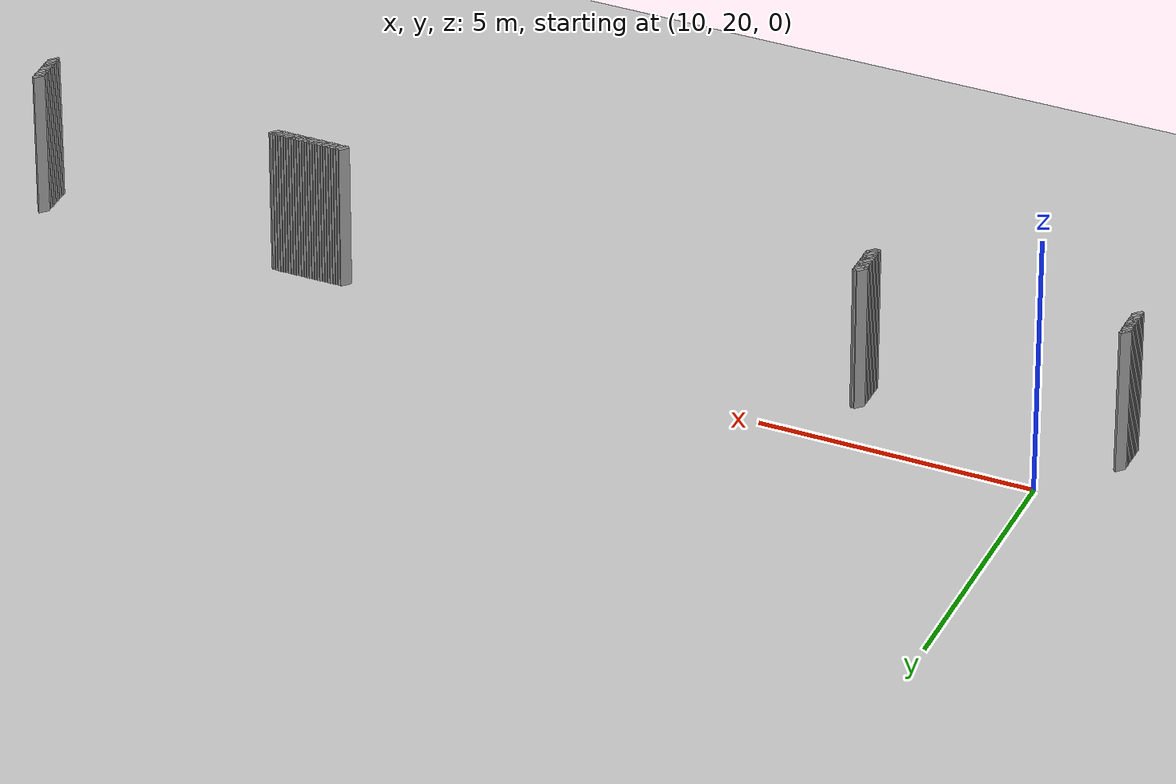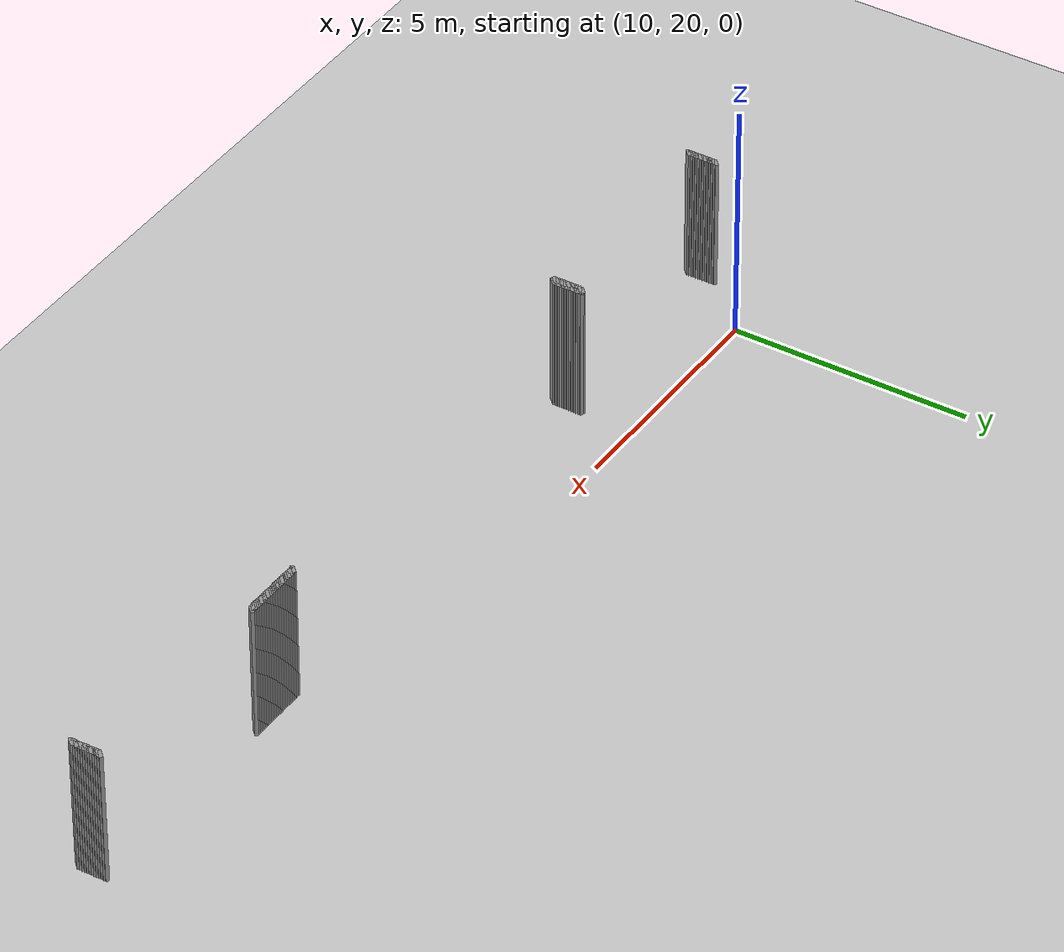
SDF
<sdf version="1.5">
 <world name="default">
  <include><uri>model://ground_plane</uri></include>
  <include><uri>model://sun</uri></include>
  <model name="grey_wall_632">
   <static>1</static>
   <link name="link">
    <pose>23.25 18.9  1.4 0 0 -0.785398163397</pose>
    <collision name="collision"><geometry><box><size>0.0707106781187 .2  2.8</size></box></geometry></collision>
    <visual name="visual">
     <cast_shadows>0</cast_shadows>
     <geometry><box><size>0.0707106781187 .2  2.8</size></box></geometry>
     <material>
      <script>
       <uri>model://grey_wall/materials/scripts</uri>
       <uri>model://grey_wall/materials/textures</uri>
       <name>vrc/grey_wall</name>
      </script>
     </material>
    </visual>
   </link>
  </model>
  <model name="grey_wall_633">
   <static>1</static>
   <link name="link">
    <pose>23.3 18.9  1.4 0 0 -0.785398163397</pose>
    <collision name="collision"><geometry><box><size>0.0707106781187 .2  2.8</size></box></geometry></collision>
    <visual name="visual">
     <cast_shadows>0</cast_shadows>
     <geometry><box><size>0.0707106781187 .2  2.8</size></box></geometry>
     <material>
      <script>
       <uri>model://grey_wall/materials/scripts</uri>
       <uri>model://grey_wall/materials/textures</uri>
       <name>vrc/grey_wall</name>
      </script>
     </material>
    </visual>
   </link>
  </model>
  <model name="grey_wall_634">
   <static>1</static>
   <link name="link">
    <pose>23.35 18.9  1.4 0 0 -0.785398163397</pose>
    <collision name="collision"><geometry><box><size>0.0707106781187 .2  2.8</size></box></geometry></collision>
    <visual name="visual">
     <cast_shadows>0</cast_shadows>
     <geometry><box><size>0.0707106781187 .2  2.8</size></box></geometry>
     <material>
      <script>
       <uri>model://grey_wall/materials/scripts</uri>
       <uri>model://grey_wall/materials/textures</uri>
       <name>vrc/grey_wall</name>
      </script>
     </material>
    </visual>
   </link>
  </model>
  <model name="grey_wall_635">
   <static>1</static>
   <link name="link">
    <pose>23.4 18.9  1.4 0 0 -0.785398163397</pose>
    <collision name="collision"><geometry><box><size>0.0707106781187 .2  2.8</size></box></geometry></collision>
    <visual name="visual">
     <cast_shadows>0</cast_shadows>
     <geometry><box><size>0.0707106781187 .2  2.8</size></box></geometry>
     <material>
      <script>
       <uri>model://grey_wall/materials/scripts</uri>
       <uri>model://grey_wall/materials/textures</uri>
       <name>vrc/grey_wall</name>
      </script>
     </material>
    </visual>
   </link>
  </model>
  <model name="grey_wall_636">
   <static>1</static>
   <link name="link">
    <pose>23.45 18.9  1.4 0 0 -0.785398163397</pose>
    <collision name="collision"><geometry><box><size>0.0707106781187 .2  2.8</size></box></geometry></collision>
    <visual name="visual">
     <cast_shadows>0</cast_shadows>
     <geometry><box><size>0.0707106781187 .2  2.8</size></box></geometry>
     <material>
      <script>
       <uri>model://grey_wall/materials/scripts</uri>
       <uri>model://grey_wall/materials/textures</uri>
       <name>vrc/grey_wall</name>
      </script>
     </material>
    </visual>
   </link>
  </model>
  <model name="grey_wall_637">
   <static>1</static>
   <link name="link">
    <pose>23.5 18.9  1.4 0 0 -0.785398163397</pose>
    <collision name="collision"><geometry><box><size>0.0707106781187 .2  2.8</size></box></geometry></collision>
    <visual name="visual">
     <cast_shadows>0</cast_shadows>
     <geometry><box><size>0.0707106781187 .2  2.8</size></box></geometry>
     <material>
      <script>
       <uri>model://grey_wall/materials/scripts</uri>
       <uri>model://grey_wall/materials/textures</uri>
       <name>vrc/grey_wall</name>
      </script>
     </material>
    </visual>
   </link>
  </model>
  <model name="grey_wall_638">
   <static>1</static>
   <link name="link">
    <pose>23.55 18.9  1.4 0 0 -0.785398163397</pose>
    <collision name="collision"><geometry><box><size>0.0707106781187 .2  2.8</size></box></geometry></collision>
    <visual name="visual">
     <cast_shadows>0</cast_shadows>
     <geometry><box><size>0.0707106781187 .2  2.8</size></box></geometry>
     <material>
      <script>
       <uri>model://grey_wall/materials/scripts</uri>
       <uri>model://grey_wall/materials/textures</uri>
       <name>vrc/grey_wall</name>
      </script>
     </material>
    </visual>
   </link>
  </model>
  <model name="grey_wall_639">
   <static>1</static>
   <link name="link">
    <pose>23.6 18.9  1.4 0 0 -0.785398163397</pose>
    <collision name="collision"><geometry><box><size>0.0707106781187 .2  2.8</size></box></geometry></collision>
    <visual name="visual">
     <cast_shadows>0</cast_shadows>
     <geometry><box><size>0.0707106781187 .2  2.8</size></box></geometry>
     <material>
      <script>
       <uri>model://grey_wall/materials/scripts</uri>
       <uri>model://grey_wall/materials/textures</uri>
       <name>vrc/grey_wall</name>
      </script>
     </material>
    </visual>
   </link>
  </model>
  <model name="grey_wall_640">
   <static>1</static>
   <link name="link">
    <pose>23.65 18.9  1.4 0 0 -0.785398163397</pose>
    <collision name="collision"><geometry><box><size>0.0707106781187 .2  2.8</size></box></geometry></collision>
    <visual name="visual">
     <cast_shadows>0</cast_shadows>
     <geometry><box><size>0.0707106781187 .2  2.8</size></box></geometry>
     <material>
      <script>
       <uri>model://grey_wall/materials/scripts</uri>
       <uri>model://grey_wall/materials/textures</uri>
       <name>vrc/grey_wall</name>
      </script>
     </material>
    </visual>
   </link>
  </model>
  <model name="grey_wall_641">
   <static>1</static>
   <link name="link">
    <pose>23.7 18.9  1.4 0 0 -0.785398163397</pose>
    <collision name="collision"><geometry><box><size>0.0707106781187 .2  2.8</size></box></geometry></collision>
    <visual name="visual">
     <cast_shadows>0</cast_shadows>
     <geometry><box><size>0.0707106781187 .2  2.8</size></box></geometry>
     <material>
      <script>
       <uri>model://grey_wall/materials/scripts</uri>
       <uri>model://grey_wall/materials/textures</uri>
       <name>vrc/grey_wall</name>
      </script>
     </material>
    </visual>
   </link>
  </model>
  <model name="grey_wall_642">
   <static>1</static>
   <link name="link">
    <pose>23.75 18.9  1.4 0 0 -0.785398163397</pose>
    <collision name="collision"><geometry><box><size>0.0707106781187 .2  2.8</size></box></geometry></collision>
    <visual name="visual">
     <cast_shadows>0</cast_shadows>
     <geometry><box><size>0.0707106781187 .2  2.8</size></box></geometry>
     <material>
      <script>
       <uri>model://grey_wall/materials/scripts</uri>
       <uri>model://grey_wall/materials/textures</uri>
       <name>vrc/grey_wall</name>
      </script>
     </material>
    </visual>
   </link>
  </model>
  <model name="grey_wall_643">
   <static>1</static>
   <link name="link">
    <pose>23.8 18.9  1.4 0 0 -0.785398163397</pose>
    <collision name="collision"><geometry><box><size>0.0707106781187 .2  2.8</size></box></geometry></collision>
    <visual name="visual">
     <cast_shadows>0</cast_shadows>
     <geometry><box><size>0.0707106781187 .2  2.8</size></box></geometry>
     <material>
      <script>
       <uri>model://grey_wall/materials/scripts</uri>
       <uri>model://grey_wall/materials/textures</uri>
       <name>vrc/grey_wall</name>
      </script>
     </material>
    </visual>
   </link>
  </model>
  <model name="grey_wall_644">
   <static>1</static>
   <link name="link">
    <pose>23.85 18.9  1.4 0 0 -0.785398163397</pose>
    <collision name="collision"><geometry><box><size>0.0707106781187 .2  2.8</size></box></geometry></collision>
    <visual name="visual">
     <cast_shadows>0</cast_shadows>
     <geometry><box><size>0.0707106781187 .2  2.8</size></box></geometry>
     <material>
      <script>
       <uri>model://grey_wall/materials/scripts</uri>
       <uri>model://grey_wall/materials/textures</uri>
       <name>vrc/grey_wall</name>
      </script>
     </material>
    </visual>
   </link>
  </model>
  <model name="grey_wall_645">
   <static>1</static>
   <link name="link">
    <pose>23.9 18.9  1.4 0 0 -0.785398163397</pose>
    <collision name="collision"><geometry><box><size>0.0707106781187 .2  2.8</size></box></geometry></collision>
    <visual name="visual">
     <cast_shadows>0</cast_shadows>
     <geometry><box><size>0.0707106781187 .2  2.8</size></box></geometry>
     <material>
      <script>
       <uri>model://grey_wall/materials/scripts</uri>
       <uri>model://grey_wall/materials/textures</uri>
       <name>vrc/grey_wall</name>
      </script>
     </material>
    </visual>
   </link>
  </model>
  <model name="grey_wall_646">
   <static>1</static>
   <link name="link">
    <pose>23.95 18.9  1.4 0 0 -0.785398163397</pose>
    <collision name="collision"><geometry><box><size>0.0707106781187 .2  2.8</size></box></geometry></collision>
    <visual name="visual">
     <cast_shadows>0</cast_shadows>
     <geometry><box><size>0.0707106781187 .2  2.8</size></box></geometry>
     <material>
      <script>
       <uri>model://grey_wall/materials/scripts</uri>
       <uri>model://grey_wall/materials/textures</uri>
       <name>vrc/grey_wall</name>
      </script>
     </material>
    </visual>
   </link>
  </model>
  <model name="grey_wall_647">
   <static>1</static>
   <link name="link">
    <pose>24.0 18.9  1.4 0 0 -0.785398163397</pose>
    <collision name="collision"><geometry><box><size>0.0707106781187 .2  2.8</size></box></geometry></collision>
    <visual name="visual">
     <cast_shadows>0</cast_shadows>
     <geometry><box><size>0.0707106781187 .2  2.8</size></box></geometry>
     <material>
      <script>
       <uri>model://grey_wall/materials/scripts</uri>
       <uri>model://grey_wall/materials/textures</uri>
       <name>vrc/grey_wall</name>
      </script>
     </material>
    </visual>
   </link>
  </model>
  <model name="grey_wall_648">
   <static>1</static>
   <link name="link">
    <pose>24.05 18.9  1.4 0 0 -0.785398163397</pose>
    <collision name="collision"><geometry><box><size>0.0707106781187 .2  2.8</size></box></geometry></collision>
    <visual name="visual">
     <cast_shadows>0</cast_shadows>
     <geometry><box><size>0.0707106781187 .2  2.8</size></box></geometry>
     <material>
      <script>
       <uri>model://grey_wall/materials/scripts</uri>
       <uri>model://grey_wall/materials/textures</uri>
       <name>vrc/grey_wall</name>
      </script>
     </material>
    </visual>
   </link>
  </model>
  <model name="grey_wall_649">
   <static>1</static>
   <link name="link">
    <pose>24.1 18.9  1.4 0 0 -0.785398163397</pose>
    <collision name="collision"><geometry><box><size>0.0707106781187 .2  2.8</size></box></geometry></collision>
    <visual name="visual">
     <cast_shadows>0</cast_shadows>
     <geometry><box><size>0.0707106781187 .2  2.8</size></box></geometry>
     <material>
      <script>
       <uri>model://grey_wall/materials/scripts</uri>
       <uri>model://grey_wall/materials/textures</uri>
       <name>vrc/grey_wall</name>
      </script>
     </material>
    </visual>
   </link>
  </model>
  <model name="grey_wall_650">
   <static>1</static>
   <link name="link">
    <pose>24.15 18.9  1.4 0 0 -0.785398163397</pose>
    <collision name="collision"><geometry><box><size>0.0707106781187 .2  2.8</size></box></geometry></collision>
    <visual name="visual">
     <cast_shadows>0</cast_shadows>
     <geometry><box><size>0.0707106781187 .2  2.8</size></box></geometry>
     <material>
      <script>
       <uri>model://grey_wall/materials/scripts</uri>
       <uri>model://grey_wall/materials/textures</uri>
       <name>vrc/grey_wall</name>
      </script>
     </material>
    </visual>
   </link>
  </model>
  <model name="grey_wall_651">
   <static>1</static>
   <link name="link">
    <pose>24.2 18.9  1.4 0 0 -0.785398163397</pose>
    <collision name="collision"><geometry><box><size>0.0707106781187 .2  2.8</size></box></geometry></collision>
    <visual name="visual">
     <cast_shadows>0</cast_shadows>
     <geometry><box><size>0.0707106781187 .2  2.8</size></box></geometry>
     <material>
      <script>
       <uri>model://grey_wall/materials/scripts</uri>
       <uri>model://grey_wall/materials/textures</uri>
       <name>vrc/grey_wall</name>
      </script>
     </material>
    </visual>
   </link>
  </model>
  <model name="grey_wall_652">
   <static>1</static>
   <link name="link">
    <pose>24.25 18.9  1.4 0 0 -0.785398163397</pose>
    <collision name="collision"><geometry><box><size>0.0707106781187 .2  2.8</size></box></geometry></collision>
    <visual name="visual">
     <cast_shadows>0</cast_shadows>
     <geometry><box><size>0.0707106781187 .2  2.8</size></box></geometry>
     <material>
      <script>
       <uri>model://grey_wall/materials/scripts</uri>
       <uri>model://grey_wall/materials/textures</uri>
       <name>vrc/grey_wall</name>
      </script>
     </material>
    </visual>
   </link>
  </model>
  <model name="grey_wall_653">
   <static>1</static>
   <link name="link">
    <pose>24.3 18.9  1.4 0 0 -0.785398163397</pose>
    <collision name="collision"><geometry><box><size>0.0707106781187 .2  2.8</size></box></geometry></collision>
    <visual name="visual">
     <cast_shadows>0</cast_shadows>
     <geometry><box><size>0.0707106781187 .2  2.8</size></box></geometry>
     <material>
      <script>
       <uri>model://grey_wall/materials/scripts</uri>
       <uri>model://grey_wall/materials/textures</uri>
       <name>vrc/grey_wall</name>
      </script>
     </material>
    </visual>
   </link>
  </model>
  <model name="grey_wall_654">
   <static>1</static>
   <link name="link">
    <pose>24.35 18.9  1.4 0 0 -0.785398163397</pose>
    <collision name="collision"><geometry><box><size>0.0707106781187 .2  2.8</size></box></geometry></collision>
    <visual name="visual">
     <cast_shadows>0</cast_shadows>
     <geometry><box><size>0.0707106781187 .2  2.8</size></box></geometry>
     <material>
      <script>
       <uri>model://grey_wall/materials/scripts</uri>
       <uri>model://grey_wall/materials/textures</uri>
       <name>vrc/grey_wall</name>
      </script>
     </material>
    </visual>
   </link>
  </model>
  <model name="grey_wall_655">
   <static>1</static>
   <link name="link">
    <pose>24.4 18.9  1.4 0 0 -0.785398163397</pose>
    <collision name="collision"><geometry><box><size>0.0707106781187 .2  2.8</size></box></geometry></collision>
    <visual name="visual">
     <cast_shadows>0</cast_shadows>
     <geometry><box><size>0.0707106781187 .2  2.8</size></box></geometry>
     <material>
      <script>
       <uri>model://grey_wall/materials/scripts</uri>
       <uri>model://grey_wall/materials/textures</uri>
       <name>vrc/grey_wall</name>
      </script>
     </material>
    </visual>
   </link>
  </model>
  <model name="grey_wall_656">
   <static>1</static>
   <link name="link">
    <pose>24.45 18.9  1.4 0 0 -0.785398163397</pose>
    <collision name="collision"><geometry><box><size>0.0707106781187 .2  2.8</size></box></geometry></collision>
    <visual name="visual">
     <cast_shadows>0</cast_shadows>
     <geometry><box><size>0.0707106781187 .2  2.8</size></box></geometry>
     <material>
      <script>
       <uri>model://grey_wall/materials/scripts</uri>
       <uri>model://grey_wall/materials/textures</uri>
       <name>vrc/grey_wall</name>
      </script>
     </material>
    </visual>
   </link>
  </model>
  <model name="grey_wall_657">
   <static>1</static>
   <link name="link">
    <pose>24.5 18.9  1.4 0 0 -0.785398163397</pose>
    <collision name="collision"><geometry><box><size>0.0707106781187 .2  2.8</size></box></geometry></collision>
    <visual name="visual">
     <cast_shadows>0</cast_shadows>
     <geometry><box><size>0.0707106781187 .2  2.8</size></box></geometry>
     <material>
      <script>
       <uri>model://grey_wall/materials/scripts</uri>
       <uri>model://grey_wall/materials/textures</uri>
       <name>vrc/grey_wall</name>
      </script>
     </material>
    </visual>
   </link>
  </model>
  <model name="grey_wall_658">
   <static>1</static>
   <link name="link">
    <pose>24.55 18.9  1.4 0 0 -0.785398163397</pose>
    <collision name="collision"><geometry><box><size>0.0707106781187 .2  2.8</size></box></geometry></collision>
    <visual name="visual">
     <cast_shadows>0</cast_shadows>
     <geometry><box><size>0.0707106781187 .2  2.8</size></box></geometry>
     <material>
      <script>
       <uri>model://grey_wall/materials/scripts</uri>
       <uri>model://grey_wall/materials/textures</uri>
       <name>vrc/grey_wall</name>
      </script>
     </material>
    </visual>
   </link>
  </model>
  <model name="grey_wall_659">
   <static>1</static>
   <link name="link">
    <pose>29.1 18.9  1.4 0 0 -0.785398163397</pose>
    <collision name="collision"><geometry><box><size>0.0707106781187 .2  2.8</size></box></geometry></collision>
    <visual name="visual">
     <cast_shadows>0</cast_shadows>
     <geometry><box><size>0.0707106781187 .2  2.8</size></box></geometry>
     <material>
      <script>
       <uri>model://grey_wall/materials/scripts</uri>
       <uri>model://grey_wall/materials/textures</uri>
       <name>vrc/grey_wall</name>
      </script>
     </material>
    </visual>
   </link>
  </model>
  <model name="grey_wall_660">
   <static>1</static>
   <link name="link">
    <pose>8.9 18.85  1.4 0 0 -0.785398163397</pose>
    <collision name="collision"><geometry><box><size>0.0707106781187 .2  2.8</size></box></geometry></collision>
    <visual name="visual">
     <cast_shadows>0</cast_shadows>
     <geometry><box><size>0.0707106781187 .2  2.8</size></box></geometry>
     <material>
      <script>
       <uri>model://grey_wall/materials/scripts</uri>
       <uri>model://grey_wall/materials/textures</uri>
       <name>vrc/grey_wall</name>
      </script>
     </material>
    </visual>
   </link>
  </model>
  <model name="grey_wall_661">
   <static>1</static>
   <link name="link">
    <pose>13.65 18.85  1.4 0 0 -0.785398163397</pose>
    <collision name="collision"><geometry><box><size>0.0707106781187 .2  2.8</size></box></geometry></collision>
    <visual name="visual">
     <cast_shadows>0</cast_shadows>
     <geometry><box><size>0.0707106781187 .2  2.8</size></box></geometry>
     <material>
      <script>
       <uri>model://grey_wall/materials/scripts</uri>
       <uri>model://grey_wall/materials/textures</uri>
       <name>vrc/grey_wall</name>
      </script>
     </material>
    </visual>
   </link>
  </model>
  <model name="grey_wall_662">
   <static>1</static>
   <link name="link">
    <pose>13.7 18.85  1.4 0 0 -0.785398163397</pose>
    <collision name="collision"><geometry><box><size>0.0707106781187 .2  2.8</size></box></geometry></collision>
    <visual name="visual">
     <cast_shadows>0</cast_shadows>
     <geometry><box><size>0.0707106781187 .2  2.8</size></box></geometry>
     <material>
      <script>
       <uri>model://grey_wall/materials/scripts</uri>
       <uri>model://grey_wall/materials/textures</uri>
       <name>vrc/grey_wall</name>
      </script>
     </material>
    </visual>
   </link>
  </model>
  <model name="grey_wall_663">
   <static>1</static>
   <link name="link">
    <pose>29.1 18.85  1.4 0 0 -0.785398163397</pose>
    <collision name="collision"><geometry><box><size>0.0707106781187 .2  2.8</size></box></geometry></collision>
    <visual name="visual">
     <cast_shadows>0</cast_shadows>
     <geometry><box><size>0.0707106781187 .2  2.8</size></box></geometry>
     <material>
      <script>
       <uri>model://grey_wall/materials/scripts</uri>
       <uri>model://grey_wall/materials/textures</uri>
       <name>vrc/grey_wall</name>
      </script>
     </material>
    </visual>
   </link>
  </model>
  <model name="grey_wall_664">
   <static>1</static>
   <link name="link">
    <pose>8.9 18.8  1.4 0 0 -0.785398163397</pose>
    <collision name="collision"><geometry><box><size>0.0707106781187 .2  2.8</size></box></geometry></collision>
    <visual name="visual">
     <cast_shadows>0</cast_shadows>
     <geometry><box><size>0.0707106781187 .2  2.8</size></box></geometry>
     <material>
      <script>
       <uri>model://grey_wall/materials/scripts</uri>
       <uri>model://grey_wall/materials/textures</uri>
       <name>vrc/grey_wall</name>
      </script>
     </material>
    </visual>
   </link>
  </model>
  <model name="grey_wall_665">
   <static>1</static>
   <link name="link">
    <pose>13.65 18.8  1.4 0 0 -0.785398163397</pose>
    <collision name="collision"><geometry><box><size>0.0707106781187 .2  2.8</size></box></geometry></collision>
    <visual name="visual">
     <cast_shadows>0</cast_shadows>
     <geometry><box><size>0.0707106781187 .2  2.8</size></box></geometry>
     <material>
      <script>
       <uri>model://grey_wall/materials/scripts</uri>
       <uri>model://grey_wall/materials/textures</uri>
       <name>vrc/grey_wall</name>
      </script>
     </material>
    </visual>
   </link>
  </model>
  <model name="grey_wall_666">
   <static>1</static>
   <link name="link">
    <pose>13.7 18.8  1.4 0 0 -0.785398163397</pose>
    <collision name="collision"><geometry><box><size>0.0707106781187 .2  2.8</size></box></geometry></collision>
    <visual name="visual">
     <cast_shadows>0</cast_shadows>
     <geometry><box><size>0.0707106781187 .2  2.8</size></box></geometry>
     <material>
      <script>
       <uri>model://grey_wall/materials/scripts</uri>
       <uri>model://grey_wall/materials/textures</uri>
       <name>vrc/grey_wall</name>
      </script>
     </material>
    </visual>
   </link>
  </model>
  <model name="grey_wall_667">
   <static>1</static>
   <link name="link">
    <pose>29.1 18.8  1.4 0 0 -0.785398163397</pose>
    <collision name="collision"><geometry><box><size>0.0707106781187 .2  2.8</size></box></geometry></collision>
    <visual name="visual">
     <cast_shadows>0</cast_shadows>
     <geometry><box><size>0.0707106781187 .2  2.8</size></box></geometry>
     <material>
      <script>
       <uri>model://grey_wall/materials/scripts</uri>
       <uri>model://grey_wall/materials/textures</uri>
       <name>vrc/grey_wall</name>
      </script>
     </material>
    </visual>
   </link>
  </model>
  <model name="grey_wall_668">
   <static>1</static>
   <link name="link">
    <pose>8.9 18.75  1.4 0 0 -0.785398163397</pose>
    <collision name="collision"><geometry><box><size>0.0707106781187 .2  2.8</size></box></geometry></collision>
    <visual name="visual">
     <cast_shadows>0</cast_shadows>
     <geometry><box><size>0.0707106781187 .2  2.8</size></box></geometry>
     <material>
      <script>
       <uri>model://grey_wall/materials/scripts</uri>
       <uri>model://grey_wall/materials/textures</uri>
       <name>vrc/grey_wall</name>
      </script>
     </material>
    </visual>
   </link>
  </model>
  <model name="grey_wall_669">
   <static>1</static>
   <link name="link">
    <pose>13.65 18.75  1.4 0 0 -0.785398163397</pose>
    <collision name="collision"><geometry><box><size>0.0707106781187 .2  2.8</size></box></geometry></collision>
    <visual name="visual">
     <cast_shadows>0</cast_shadows>
     <geometry><box><size>0.0707106781187 .2  2.8</size></box></geometry>
     <material>
      <script>
       <uri>model://grey_wall/materials/scripts</uri>
       <uri>model://grey_wall/materials/textures</uri>
       <name>vrc/grey_wall</name>
      </script>
     </material>
    </visual>
   </link>
  </model>
  <model name="grey_wall_670">
   <static>1</static>
   <link name="link">
    <pose>13.7 18.75  1.4 0 0 -0.785398163397</pose>
    <collision name="collision"><geometry><box><size>0.0707106781187 .2  2.8</size></box></geometry></collision>
    <visual name="visual">
     <cast_shadows>0</cast_shadows>
     <geometry><box><size>0.0707106781187 .2  2.8</size></box></geometry>
     <material>
      <script>
       <uri>model://grey_wall/materials/scripts</uri>
       <uri>model://grey_wall/materials/textures</uri>
       <name>vrc/grey_wall</name>
      </script>
     </material>
    </visual>
   </link>
  </model>
  <model name="grey_wall_671">
   <static>1</static>
   <link name="link">
    <pose>29.1 18.75  1.4 0 0 -0.785398163397</pose>
    <collision name="collision"><geometry><box><size>0.0707106781187 .2  2.8</size></box></geometry></collision>
    <visual name="visual">
     <cast_shadows>0</cast_shadows>
     <geometry><box><size>0.0707106781187 .2  2.8</size></box></geometry>
     <material>
      <script>
       <uri>model://grey_wall/materials/scripts</uri>
       <uri>model://grey_wall/materials/textures</uri>
       <name>vrc/grey_wall</name>
      </script>
     </material>
    </visual>
   </link>
  </model>
  <model name="grey_wall_672">
   <static>1</static>
   <link name="link">
    <pose>8.9 18.7  1.4 0 0 -0.785398163397</pose>
    <collision name="collision"><geometry><box><size>0.0707106781187 .2  2.8</size></box></geometry></collision>
    <visual name="visual">
     <cast_shadows>0</cast_shadows>
     <geometry><box><size>0.0707106781187 .2  2.8</size></box></geometry>
     <material>
      <script>
       <uri>model://grey_wall/materials/scripts</uri>
       <uri>model://grey_wall/materials/textures</uri>
       <name>vrc/grey_wall</name>
      </script>
     </material>
    </visual>
   </link>
  </model>
  <model name="grey_wall_673">
   <static>1</static>
   <link name="link">
    <pose>13.65 18.7  1.4 0 0 -0.785398163397</pose>
    <collision name="collision"><geometry><box><size>0.0707106781187 .2  2.8</size></box></geometry></collision>
    <visual name="visual">
     <cast_shadows>0</cast_shadows>
     <geometry><box><size>0.0707106781187 .2  2.8</size></box></geometry>
     <material>
      <script>
       <uri>model://grey_wall/materials/scripts</uri>
       <uri>model://grey_wall/materials/textures</uri>
       <name>vrc/grey_wall</name>
      </script>
     </material>
    </visual>
   </link>
  </model>
  <model name="grey_wall_674">
   <static>1</static>
   <link name="link">
    <pose>13.7 18.7  1.4 0 0 -0.785398163397</pose>
    <collision name="collision"><geometry><box><size>0.0707106781187 .2  2.8</size></box></geometry></collision>
    <visual name="visual">
     <cast_shadows>0</cast_shadows>
     <geometry><box><size>0.0707106781187 .2  2.8</size></box></geometry>
     <material>
      <script>
       <uri>model://grey_wall/materials/scripts</uri>
       <uri>model://grey_wall/materials/textures</uri>
       <name>vrc/grey_wall</name>
      </script>
     </material>
    </visual>
   </link>
  </model>
  <model name="grey_wall_675">
   <static>1</static>
   <link name="link">
    <pose>29.1 18.7  1.4 0 0 -0.785398163397</pose>
    <collision name="collision"><geometry><box><size>0.0707106781187 .2  2.8</size></box></geometry></collision>
    <visual name="visual">
     <cast_shadows>0</cast_shadows>
     <geometry><box><size>0.0707106781187 .2  2.8</size></box></geometry>
     <material>
      <script>
       <uri>model://grey_wall/materials/scripts</uri>
       <uri>model://grey_wall/materials/textures</uri>
       <name>vrc/grey_wall</name>
      </script>
     </material>
    </visual>
   </link>
  </model>
  <model name="grey_wall_676">
   <static>1</static>
   <link name="link">
    <pose>8.9 18.65  1.4 0 0 -0.785398163397</pose>
    <collision name="collision"><geometry><box><size>0.0707106781187 .2  2.8</size></box></geometry></collision>
    <visual name="visual">
     <cast_shadows>0</cast_shadows>
     <geometry><box><size>0.0707106781187 .2  2.8</size></box></geometry>
     <material>
      <script>
       <uri>model://grey_wall/materials/scripts</uri>
       <uri>model://grey_wall/materials/textures</uri>
       <name>vrc/grey_wall</name>
      </script>
     </material>
    </visual>
   </link>
  </model>
  <model name="grey_wall_677">
   <static>1</static>
   <link name="link">
    <pose>13.65 18.65  1.4 0 0 -0.785398163397</pose>
    <collision name="collision"><geometry><box><size>0.0707106781187 .2  2.8</size></box></geometry></collision>
    <visual name="visual">
     <cast_shadows>0</cast_shadows>
     <geometry><box><size>0.0707106781187 .2  2.8</size></box></geometry>
     <material>
      <script>
       <uri>model://grey_wall/materials/scripts</uri>
       <uri>model://grey_wall/materials/textures</uri>
       <name>vrc/grey_wall</name>
      </script>
     </material>
    </visual>
   </link>
  </model>
  <model name="grey_wall_678">
   <static>1</static>
   <link name="link">
    <pose>13.7 18.65  1.4 0 0 -0.785398163397</pose>
    <collision name="collision"><geometry><box><size>0.0707106781187 .2  2.8</size></box></geometry></collision>
    <visual name="visual">
     <cast_shadows>0</cast_shadows>
     <geometry><box><size>0.0707106781187 .2  2.8</size></box></geometry>
     <material>
      <script>
       <uri>model://grey_wall/materials/scripts</uri>
       <uri>model://grey_wall/materials/textures</uri>
       <name>vrc/grey_wall</name>
      </script>
     </material>
    </visual>
   </link>
  </model>
  <model name="grey_wall_679">
   <static>1</static>
   <link name="link">
    <pose>29.1 18.65  1.4 0 0 -0.785398163397</pose>
    <collision name="collision"><geometry><box><size>0.0707106781187 .2  2.8</size></box></geometry></collision>
    <visual name="visual">
     <cast_shadows>0</cast_shadows>
     <geometry><box><size>0.0707106781187 .2  2.8</size></box></geometry>
     <material>
      <script>
       <uri>model://grey_wall/materials/scripts</uri>
       <uri>model://grey_wall/materials/textures</uri>
       <name>vrc/grey_wall</name>
      </script>
     </material>
    </visual>
   </link>
  </model>
  <model name="grey_wall_680">
   <static>1</static>
   <link name="link">
    <pose>8.9 18.6  1.4 0 0 -0.785398163397</pose>
    <collision name="collision"><geometry><box><size>0.0707106781187 .2  2.8</size></box></geometry></collision>
    <visual name="visual">
     <cast_shadows>0</cast_shadows>
     <geometry><box><size>0.0707106781187 .2  2.8</size></box></geometry>
     <material>
      <script>
       <uri>model://grey_wall/materials/scripts</uri>
       <uri>model://grey_wall/materials/textures</uri>
       <name>vrc/grey_wall</name>
      </script>
     </material>
    </visual>
   </link>
  </model>
  <model name="grey_wall_681">
   <static>1</static>
   <link name="link">
    <pose>13.65 18.6  1.4 0 0 -0.785398163397</pose>
    <collision name="collision"><geometry><box><size>0.0707106781187 .2  2.8</size></box></geometry></collision>
    <visual name="visual">
     <cast_shadows>0</cast_shadows>
     <geometry><box><size>0.0707106781187 .2  2.8</size></box></geometry>
     <material>
      <script>
       <uri>model://grey_wall/materials/scripts</uri>
       <uri>model://grey_wall/materials/textures</uri>
       <name>vrc/grey_wall</name>
      </script>
     </material>
    </visual>
   </link>
  </model>
  <model name="grey_wall_682">
   <static>1</static>
   <link name="link">
    <pose>13.7 18.6  1.4 0 0 -0.785398163397</pose>
    <collision name="collision"><geometry><box><size>0.0707106781187 .2  2.8</size></box></geometry></collision>
    <visual name="visual">
     <cast_shadows>0</cast_shadows>
     <geometry><box><size>0.0707106781187 .2  2.8</size></box></geometry>
     <material>
      <script>
       <uri>model://grey_wall/materials/scripts</uri>
       <uri>model://grey_wall/materials/textures</uri>
       <name>vrc/grey_wall</name>
      </script>
     </material>
    </visual>
   </link>
  </model>
  <model name="grey_wall_683">
   <static>1</static>
   <link name="link">
    <pose>29.1 18.6  1.4 0 0 -0.785398163397</pose>
    <collision name="collision"><geometry><box><size>0.0707106781187 .2  2.8</size></box></geometry></collision>
    <visual name="visual">
     <cast_shadows>0</cast_shadows>
     <geometry><box><size>0.0707106781187 .2  2.8</size></box></geometry>
     <material>
      <script>
       <uri>model://grey_wall/materials/scripts</uri>
       <uri>model://grey_wall/materials/textures</uri>
       <name>vrc/grey_wall</name>
      </script>
     </material>
    </visual>
   </link>
  </model>
  <model name="grey_wall_684">
   <static>1</static>
   <link name="link">
    <pose>8.9 18.55  1.4 0 0 -0.785398163397</pose>
    <collision name="collision"><geometry><box><size>0.0707106781187 .2  2.8</size></box></geometry></collision>
    <visual name="visual">
     <cast_shadows>0</cast_shadows>
     <geometry><box><size>0.0707106781187 .2  2.8</size></box></geometry>
     <material>
      <script>
       <uri>model://grey_wall/materials/scripts</uri>
       <uri>model://grey_wall/materials/textures</uri>
       <name>vrc/grey_wall</name>
      </script>
     </material>
    </visual>
   </link>
  </model>
  <model name="grey_wall_685">
   <static>1</static>
   <link name="link">
    <pose>13.65 18.55  1.4 0 0 -0.785398163397</pose>
    <collision name="collision"><geometry><box><size>0.0707106781187 .2  2.8</size></box></geometry></collision>
    <visual name="visual">
     <cast_shadows>0</cast_shadows>
     <geometry><box><size>0.0707106781187 .2  2.8</size></box></geometry>
     <material>
      <script>
       <uri>model://grey_wall/materials/scripts</uri>
       <uri>model://grey_wall/materials/textures</uri>
       <name>vrc/grey_wall</name>
      </script>
     </material>
    </visual>
   </link>
  </model>
  <model name="grey_wall_686">
   <static>1</static>
   <link name="link">
    <pose>13.7 18.55  1.4 0 0 -0.785398163397</pose>
    <collision name="collision"><geometry><box><size>0.0707106781187 .2  2.8</size></box></geometry></collision>
    <visual name="visual">
     <cast_shadows>0</cast_shadows>
     <geometry><box><size>0.0707106781187 .2  2.8</size></box></geometry>
     <material>
      <script>
       <uri>model://grey_wall/materials/scripts</uri>
       <uri>model://grey_wall/materials/textures</uri>
       <name>vrc/grey_wall</name>
      </script>
     </material>
    </visual>
   </link>
  </model>
  <model name="grey_wall_687">
   <static>1</static>
   <link name="link">
    <pose>29.1 18.55  1.4 0 0 -0.785398163397</pose>
    <collision name="collision"><geometry><box><size>0.0707106781187 .2  2.8</size></box></geometry></collision>
    <visual name="visual">
     <cast_shadows>0</cast_shadows>
     <geometry><box><size>0.0707106781187 .2  2.8</size></box></geometry>
     <material>
      <script>
       <uri>model://grey_wall/materials/scripts</uri>
       <uri>model://grey_wall/materials/textures</uri>
       <name>vrc/grey_wall</name>
      </script>
     </material>
    </visual>
   </link>
  </model>
  <model name="grey_wall_688">
   <static>1</static>
   <link name="link">
    <pose>8.9 18.5  1.4 0 0 -0.785398163397</pose>
    <collision name="collision"><geometry><box><size>0.0707106781187 .2  2.8</size></box></geometry></collision>
    <visual name="visual">
     <cast_shadows>0</cast_shadows>
     <geometry><box><size>0.0707106781187 .2  2.8</size></box></geometry>
     <material>
      <script>
       <uri>model://grey_wall/materials/scripts</uri>
       <uri>model://grey_wall/materials/textures</uri>
       <name>vrc/grey_wall</name>
      </script>
     </material>
    </visual>
   </link>
  </model>
  <model name="grey_wall_689">
   <static>1</static>
   <link name="link">
    <pose>13.65 18.5  1.4 0 0 -0.785398163397</pose>
    <collision name="collision"><geometry><box><size>0.0707106781187 .2  2.8</size></box></geometry></collision>
    <visual name="visual">
     <cast_shadows>0</cast_shadows>
     <geometry><box><size>0.0707106781187 .2  2.8</size></box></geometry>
     <material>
      <script>
       <uri>model://grey_wall/materials/scripts</uri>
       <uri>model://grey_wall/materials/textures</uri>
       <name>vrc/grey_wall</name>
      </script>
     </material>
    </visual>
   </link>
  </model>
  <model name="grey_wall_690">
   <static>1</static>
   <link name="link">
    <pose>13.7 18.5  1.4 0 0 -0.785398163397</pose>
    <collision name="collision"><geometry><box><size>0.0707106781187 .2  2.8</size></box></geometry></collision>
    <visual name="visual">
     <cast_shadows>0</cast_shadows>
     <geometry><box><size>0.0707106781187 .2  2.8</size></box></geometry>
     <material>
      <script>
       <uri>model://grey_wall/materials/scripts</uri>
       <uri>model://grey_wall/materials/textures</uri>
       <name>vrc/grey_wall</name>
      </script>
     </material>
    </visual>
   </link>
  </model>
  <model name="grey_wall_691">
   <static>1</static>
   <link name="link">
    <pose>29.1 18.5  1.4 0 0 -0.785398163397</pose>
    <collision name="collision"><geometry><box><size>0.0707106781187 .2  2.8</size></box></geometry></collision>
    <visual name="visual">
     <cast_shadows>0</cast_shadows>
     <geometry><box><size>0.0707106781187 .2  2.8</size></box></geometry>
     <material>
      <script>
       <uri>model://grey_wall/materials/scripts</uri>
       <uri>model://grey_wall/materials/textures</uri>
       <name>vrc/grey_wall</name>
      </script>
     </material>
    </visual>
   </link>
  </model>
  <model name="grey_wall_692">
   <static>1</static>
   <link name="link">
    <pose>8.9 18.45  1.4 0 0 -0.785398163397</pose>
    <collision name="collision"><geometry><box><size>0.0707106781187 .2  2.8</size></box></geometry></collision>
    <visual name="visual">
     <cast_shadows>0</cast_shadows>
     <geometry><box><size>0.0707106781187 .2  2.8</size></box></geometry>
     <material>
      <script>
       <uri>model://grey_wall/materials/scripts</uri>
       <uri>model://grey_wall/materials/textures</uri>
       <name>vrc/grey_wall</name>
      </script>
     </material>
    </visual>
   </link>
  </model>
  <model name="grey_wall_693">
   <static>1</static>
   <link name="link">
    <pose>13.65 18.45  1.4 0 0 -0.785398163397</pose>
    <collision name="collision"><geometry><box><size>0.0707106781187 .2  2.8</size></box></geometry></collision>
    <visual name="visual">
     <cast_shadows>0</cast_shadows>
     <geometry><box><size>0.0707106781187 .2  2.8</size></box></geometry>
     <material>
      <script>
       <uri>model://grey_wall/materials/scripts</uri>
       <uri>model://grey_wall/materials/textures</uri>
       <name>vrc/grey_wall</name>
      </script>
     </material>
    </visual>
   </link>
  </model>
  <model name="grey_wall_694">
   <static>1</static>
   <link name="link">
    <pose>13.7 18.45  1.4 0 0 -0.785398163397</pose>
    <collision name="collision"><geometry><box><size>0.0707106781187 .2  2.8</size></box></geometry></collision>
    <visual name="visual">
     <cast_shadows>0</cast_shadows>
     <geometry><box><size>0.0707106781187 .2  2.8</size></box></geometry>
     <material>
      <script>
       <uri>model://grey_wall/materials/scripts</uri>
       <uri>model://grey_wall/materials/textures</uri>
       <name>vrc/grey_wall</name>
      </script>
     </material>
    </visual>
   </link>
  </model>
  <model name="grey_wall_695">
   <static>1</static>
   <link name="link">
    <pose>29.1 18.45  1.4 0 0 -0.785398163397</pose>
    <collision name="collision"><geometry><box><size>0.0707106781187 .2  2.8</size></box></geometry></collision>
    <visual name="visual">
     <cast_shadows>0</cast_shadows>
     <geometry><box><size>0.0707106781187 .2  2.8</size></box></geometry>
     <material>
      <script>
       <uri>model://grey_wall/materials/scripts</uri>
       <uri>model://grey_wall/materials/textures</uri>
       <name>vrc/grey_wall</name>
      </script>
     </material>
    </visual>
   </link>
  </model>
  <model name="grey_wall_696">
   <static>1</static>
   <link name="link">
    <pose>8.9 18.4  1.4 0 0 -0.785398163397</pose>
    <collision name="collision"><geometry><box><size>0.0707106781187 .2  2.8</size></box></geometry></collision>
    <visual name="visual">
     <cast_shadows>0</cast_shadows>
     <geometry><box><size>0.0707106781187 .2  2.8</size></box></geometry>
     <material>
      <script>
       <uri>model://grey_wall/materials/scripts</uri>
       <uri>model://grey_wall/materials/textures</uri>
       <name>vrc/grey_wall</name>
      </script>
     </material>
    </visual>
   </link>
  </model>
  <model name="grey_wall_697">
   <static>1</static>
   <link name="link">
    <pose>13.65 18.4  1.4 0 0 -0.785398163397</pose>
    <collision name="collision"><geometry><box><size>0.0707106781187 .2  2.8</size></box></geometry></collision>
    <visual name="visual">
     <cast_shadows>0</cast_shadows>
     <geometry><box><size>0.0707106781187 .2  2.8</size></box></geometry>
     <material>
      <script>
       <uri>model://grey_wall/materials/scripts</uri>
       <uri>model://grey_wall/materials/textures</uri>
       <name>vrc/grey_wall</name>
      </script>
     </material>
    </visual>
   </link>
  </model>
  <model name="grey_wall_698">
   <static>1</static>
   <link name="link">
    <pose>13.7 18.4  1.4 0 0 -0.785398163397</pose>
    <collision name="collision"><geometry><box><size>0.0707106781187 .2  2.8</size></box></geometry></collision>
    <visual name="visual">
     <cast_shadows>0</cast_shadows>
     <geometry><box><size>0.0707106781187 .2  2.8</size></box></geometry>
     <material>
      <script>
       <uri>model://grey_wall/materials/scripts</uri>
       <uri>model://grey_wall/materials/textures</uri>
       <name>vrc/grey_wall</name>
      </script>
     </material>
    </visual>
   </link>
  </model>
  <model name="grey_wall_699">
   <static>1</static>
   <link name="link">
    <pose>29.1 18.4  1.4 0 0 -0.785398163397</pose>
    <collision name="collision"><geometry><box><size>0.0707106781187 .2  2.8</size></box></geometry></collision>
    <visual name="visual">
     <cast_shadows>0</cast_shadows>
     <geometry><box><size>0.0707106781187 .2  2.8</size></box></geometry>
     <material>
      <script>
       <uri>model://grey_wall/materials/scripts</uri>
       <uri>model://grey_wall/materials/textures</uri>
       <name>vrc/grey_wall</name>
      </script>
     </material>
    </visual>
   </link>
  </model>
  <model name="grey_wall_700">
   <static>1</static>
   <link name="link">
    <pose>8.9 18.35  1.4 0 0 -0.785398163397</pose>
    <collision name="collision"><geometry><box><size>0.0707106781187 .2  2.8</size></box></geometry></collision>
    <visual name="visual">
     <cast_shadows>0</cast_shadows>
     <geometry><box><size>0.0707106781187 .2  2.8</size></box></geometry>
     <material>
      <script>
       <uri>model://grey_wall/materials/scripts</uri>
       <uri>model://grey_wall/materials/textures</uri>
       <name>vrc/grey_wall</name>
      </script>
     </material>
    </visual>
   </link>
  </model>
  <model name="grey_wall_701">
   <static>1</static>
   <link name="link">
    <pose>13.65 18.35  1.4 0 0 -0.785398163397</pose>
    <collision name="collision"><geometry><box><size>0.0707106781187 .2  2.8</size></box></geometry></collision>
    <visual name="visual">
     <cast_shadows>0</cast_shadows>
     <geometry><box><size>0.0707106781187 .2  2.8</size></box></geometry>
     <material>
      <script>
       <uri>model://grey_wall/materials/scripts</uri>
       <uri>model://grey_wall/materials/textures</uri>
       <name>vrc/grey_wall</name>
      </script>
     </material>
    </visual>
   </link>
  </model>
  <model name="grey_wall_702">
   <static>1</static>
   <link name="link">
    <pose>13.7 18.35  1.4 0 0 -0.785398163397</pose>
    <collision name="collision"><geometry><box><size>0.0707106781187 .2  2.8</size></box></geometry></collision>
    <visual name="visual">
     <cast_shadows>0</cast_shadows>
     <geometry><box><size>0.0707106781187 .2  2.8</size></box></geometry>
     <material>
      <script>
       <uri>model://grey_wall/materials/scripts</uri>
       <uri>model://grey_wall/materials/textures</uri>
       <name>vrc/grey_wall</name>
      </script>
     </material>
    </visual>
   </link>
  </model>
  <model name="grey_wall_703">
   <static>1</static>
   <link name="link">
    <pose>29.1 18.35  1.4 0 0 -0.785398163397</pose>
    <collision name="collision"><geometry><box><size>0.0707106781187 .2  2.8</size></box></geometry></collision>
    <visual name="visual">
     <cast_shadows>0</cast_shadows>
     <geometry><box><size>0.0707106781187 .2  2.8</size></box></geometry>
     <material>
      <script>
       <uri>model://grey_wall/materials/scripts</uri>
       <uri>model://grey_wall/materials/textures</uri>
       <name>vrc/grey_wall</name>
      </script>
     </material>
    </visual>
   </link>
  </model>
  <model name="grey_wall_704">
   <static>1</static>
   <link name="link">
    <pose>8.9 18.3  1.4 0 0 -0.785398163397</pose>
    <collision name="collision"><geometry><box><size>0.0707106781187 .2  2.8</size></box></geometry></collision>
    <visual name="visual">
     <cast_shadows>0</cast_shadows>
     <geometry><box><size>0.0707106781187 .2  2.8</size></box></geometry>
     <material>
      <script>
       <uri>model://grey_wall/materials/scripts</uri>
       <uri>model://grey_wall/materials/textures</uri>
       <name>vrc/grey_wall</name>
      </script>
     </material>
    </visual>
   </link>
  </model>
  <model name="grey_wall_705">
   <static>1</static>
   <link name="link">
    <pose>13.65 18.3  1.4 0 0 -0.785398163397</pose>
    <collision name="collision"><geometry><box><size>0.0707106781187 .2  2.8</size></box></geometry></collision>
    <visual name="visual">
     <cast_shadows>0</cast_shadows>
     <geometry><box><size>0.0707106781187 .2  2.8</size></box></geometry>
     <material>
      <script>
       <uri>model://grey_wall/materials/scripts</uri>
       <uri>model://grey_wall/materials/textures</uri>
       <name>vrc/grey_wall</name>
      </script>
     </material>
    </visual>
   </link>
  </model>
  <model name="grey_wall_706">
   <static>1</static>
   <link name="link">
    <pose>13.7 18.3  1.4 0 0 -0.785398163397</pose>
    <collision name="collision"><geometry><box><size>0.0707106781187 .2  2.8</size></box></geometry></collision>
    <visual name="visual">
     <cast_shadows>0</cast_shadows>
     <geometry><box><size>0.0707106781187 .2  2.8</size></box></geometry>
     <material>
      <script>
       <uri>model://grey_wall/materials/scripts</uri>
       <uri>model://grey_wall/materials/textures</uri>
       <name>vrc/grey_wall</name>
      </script>
     </material>
    </visual>
   </link>
  </model>
  <model name="grey_wall_707">
   <static>1</static>
   <link name="link">
    <pose>29.1 18.3  1.4 0 0 -0.785398163397</pose>
    <collision name="collision"><geometry><box><size>0.0707106781187 .2  2.8</size></box></geometry></collision>
    <visual name="visual">
     <cast_shadows>0</cast_shadows>
     <geometry><box><size>0.0707106781187 .2  2.8</size></box></geometry>
     <material>
      <script>
       <uri>model://grey_wall/materials/scripts</uri>
       <uri>model://grey_wall/materials/textures</uri>
       <name>vrc/grey_wall</name>
      </script>
     </material>
    </visual>
   </link>
  </model>
  <model name="grey_wall_708">
   <static>1</static>
   <link name="link">
    <pose>8.9 18.25  1.4 0 0 -0.785398163397</pose>
    <collision name="collision"><geometry><box><size>0.0707106781187 .2  2.8</size></box></geometry></collision>
    <visual name="visual">
     <cast_shadows>0</cast_shadows>
     <geometry><box><size>0.0707106781187 .2  2.8</size></box></geometry>
     <material>
      <script>
       <uri>model://grey_wall/materials/scripts</uri>
       <uri>model://grey_wall/materials/textures</uri>
       <name>vrc/grey_wall</name>
      </script>
     </material>
    </visual>
   </link>
  </model>
  <model name="grey_wall_709">
   <static>1</static>
   <link name="link">
    <pose>13.65 18.25  1.4 0 0 -0.785398163397</pose>
    <collision name="collision"><geometry><box><size>0.0707106781187 .2  2.8</size></box></geometry></collision>
    <visual name="visual">
     <cast_shadows>0</cast_shadows>
     <geometry><box><size>0.0707106781187 .2  2.8</size></box></geometry>
     <material>
      <script>
       <uri>model://grey_wall/materials/scripts</uri>
       <uri>model://grey_wall/materials/textures</uri>
       <name>vrc/grey_wall</name>
      </script>
     </material>
    </visual>
   </link>
  </model>
  <model name="grey_wall_710">
   <static>1</static>
   <link name="link">
    <pose>13.7 18.25  1.4 0 0 -0.785398163397</pose>
    <collision name="collision"><geometry><box><size>0.0707106781187 .2  2.8</size></box></geometry></collision>
    <visual name="visual">
     <cast_shadows>0</cast_shadows>
     <geometry><box><size>0.0707106781187 .2  2.8</size></box></geometry>
     <material>
      <script>
       <uri>model://grey_wall/materials/scripts</uri>
       <uri>model://grey_wall/materials/textures</uri>
       <name>vrc/grey_wall</name>
      </script>
     </material>
    </visual>
   </link>
  </model>
 </world>
</sdf>
